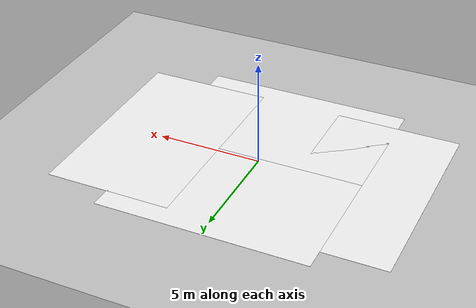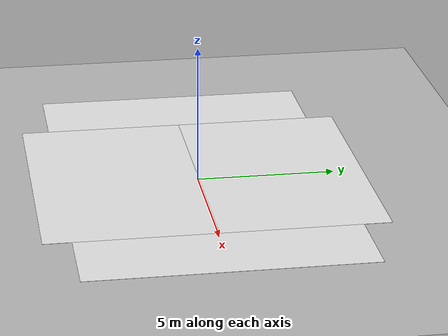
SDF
<?xml version="1.0" ?>

<sdf version="1.6">
  <world name="empty">
    <physics name="1ms" type="ignored">
      <max_step_size>0.001</max_step_size>
      <real_time_factor>1.0</real_time_factor>
    </physics>
    <plugin
      filename="gz-sim-physics-system"
      name="gz::sim::systems::Physics">
    </plugin>
    <plugin
      filename="gz-sim-user-commands-system"
      name="gz::sim::systems::UserCommands">
    </plugin>
    <plugin
      filename="gz-sim-scene-broadcaster-system"
      name="gz::sim::systems::SceneBroadcaster">
    </plugin>
    <plugin
      filename="gz-sim-contact-system"
      name="gz::sim::systems::Contact">
    </plugin>

    <plugin
      filename="gz-sim-sensors-system"
      name="gz::sim::systems::Sensors">
      <render_engine>ogre2</render_engine>
    </plugin>
    <plugin
      filename="gz-sim-imu-system"
      name="gz::sim::systems::Imu">
    </plugin>

    <light type="directional" name="sun">
      <cast_shadows>true</cast_shadows>
      <pose>0 0 10 0 0 0</pose>
      <diffuse>0.8 0.8 0.8 1</diffuse>
      <specular>0.2 0.2 0.2 1</specular>
      <attenuation>
        <range>1000</range>
        <constant>0.9</constant>
        <linear>0.01</linear>
        <quadratic>0.001</quadratic>
      </attenuation>
      <direction>-0.5 0.1 -0.9</direction>
    </light>

    <gravity>0 0 -9.8000000000000007</gravity>
    <magnetic_field>5.5644999999999998e-06 2.2875799999999999e-05 -4.2388400000000002e-05</magnetic_field>
    <atmosphere type='adiabatic'/>
    <scene>
      <ambient>0.400000006 0.400000006 0.400000006 1</ambient>
      <background>0.699999988 0.699999988 0.699999988 1</background>
      <shadows>true</shadows>
    </scene>

    <model name="ground_plane">
      <static>true</static>
      <link name="link">
        <collision name="collision">
          <geometry>
            <plane>
              <normal>0 0 1</normal>
              <size>100 100</size>
            </plane>
          </geometry>
          <surface>
            <friction>
              <ode>
                <mu>50</mu>
              </ode>
            </friction>
            <bounce/>
            <contact/>
          </surface>
        </collision>
        <visual name="visual">
          <geometry>
            <plane>
              <normal>0 0 1</normal>
              <size>100 100</size>
            </plane>
          </geometry>
          <material>
            <ambient>0.8 0.8 0.8 1</ambient>
            <diffuse>0.8 0.8 0.8 1</diffuse>
            <specular>0.8 0.8 0.8 1</specular>
          </material>
        </visual>
      </link>
    </model>

    <include>
      <uri>model://autorace</uri>
    </include>

    <include>
      <!-- 패키지/모델 설치 경로에 맞게 수정 -->
      <uri>model://wall_10m/model.sdf</uri>
      <!-- 월드 내 배치 포즈: X Y Z R P Y -->
      <pose>0 -3 .15 0 0 0</pose>
      <name>wall_10m_A</name>
    </include>

    <include>
      <!-- 패키지/모델 설치 경로에 맞게 수정 -->
      <uri>model://wall_10m/model.sdf</uri>
      <!-- 월드 내 배치 포즈: X Y Z R P Y -->
      <pose>0 3 .15 0 0 0</pose>
      <name>wall_10m_B</name>
    </include>

    <include>
      <!-- 패키지/모델 설치 경로에 맞게 수정 -->
      <uri>model://wall_6m/model.sdf</uri>
      <!-- 월드 내 배치 포즈: X Y Z R P Y -->
      <pose>5 0 .15 0 0 -1.5707</pose>
      <name>wall_6m_A</name>
    </include>

    <include>
      <!-- 패키지/모델 설치 경로에 맞게 수정 -->
      <uri>model://wall_6m/model.sdf</uri>
      <!-- 월드 내 배치 포즈: X Y Z R P Y -->
      <pose>-5 0 .15 0 0 -1.5707</pose>
      <name>wall_6m_B</name>
    </include>

  </world>
</sdf>

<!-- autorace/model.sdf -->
<sdf version='1.9'>
  <model name='autorace'>
    <static>true</static>
    <pose>0 0 0.001 0 0 0</pose>
    <link name='base'>
      <visual name='base_visual'>
        <geometry>
          <plane>
            <normal>0 0 1</normal>
            <size>10. 6.</size>
          </plane>
        </geometry>
        <material>
          <diffuse>1 1 1 1</diffuse>
          <specular>0.4 0.4 0.4 1</specular>
          <pbr>
            <metal>
              <albedo_map>model://autorace/autorace.png</albedo_map>
            </metal>
          </pbr>
        </material>
      </visual>
    </link>
  </model>
</sdf>
